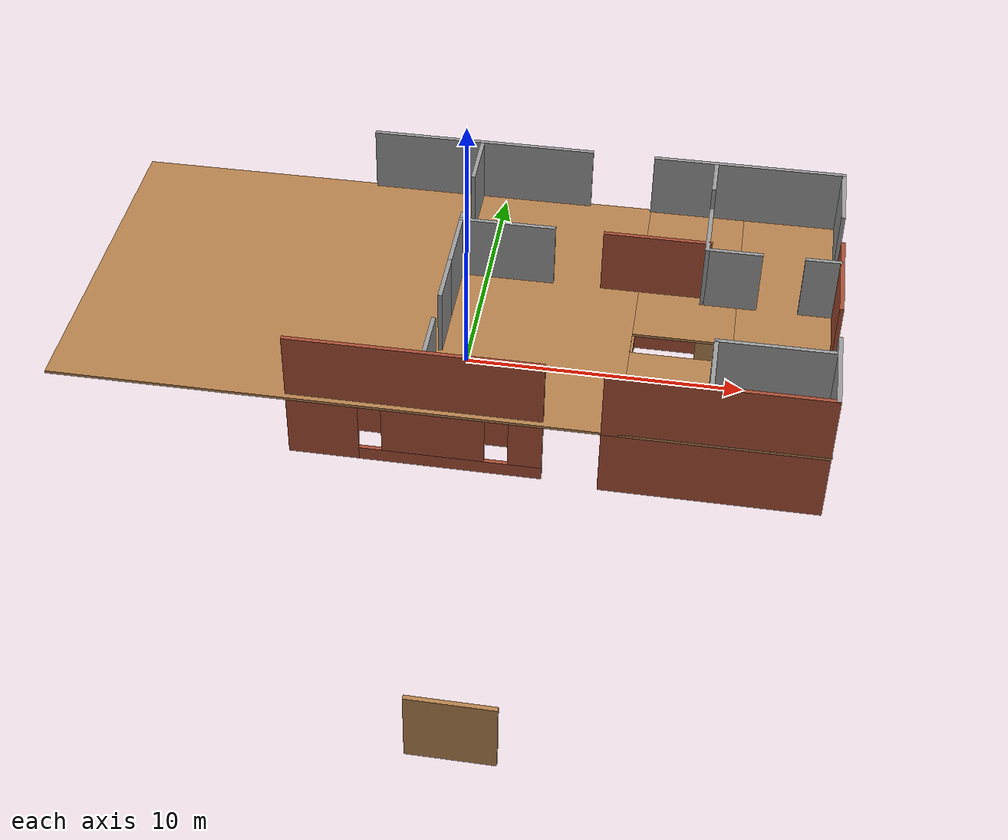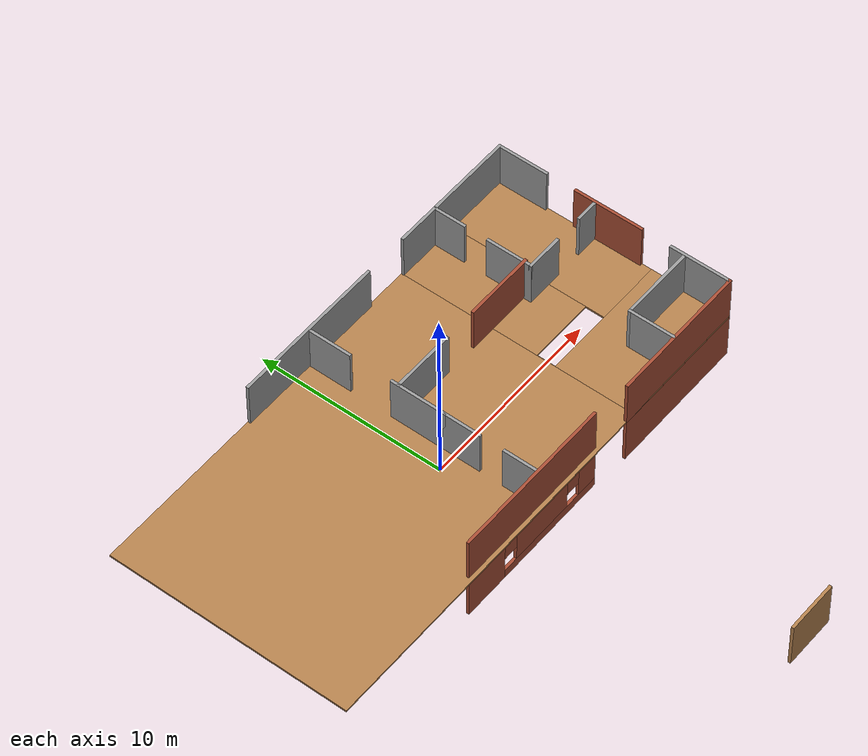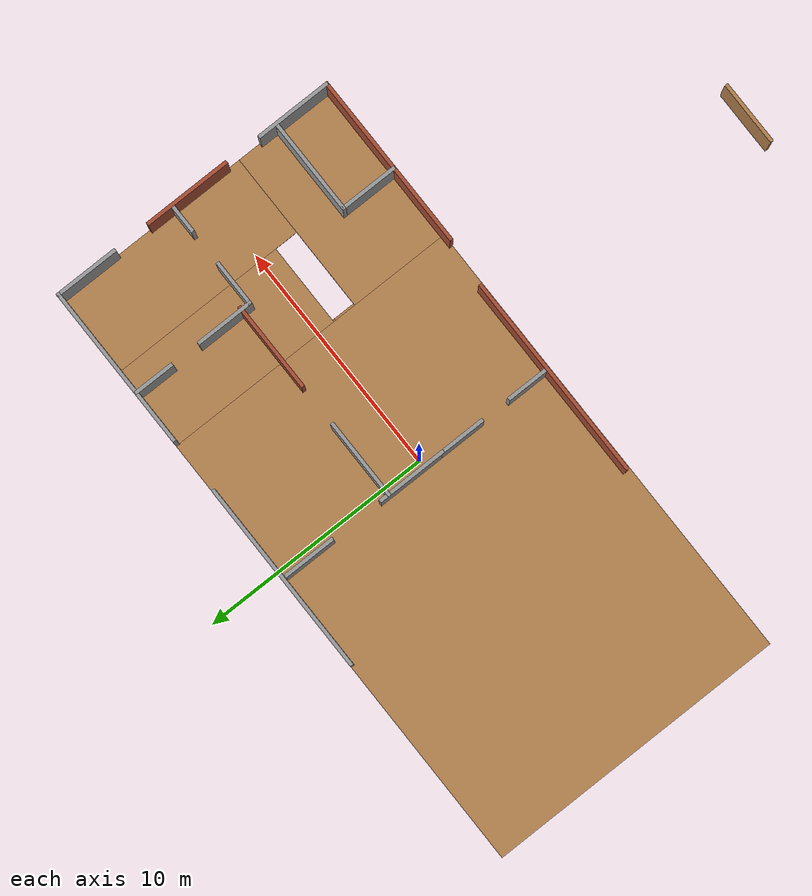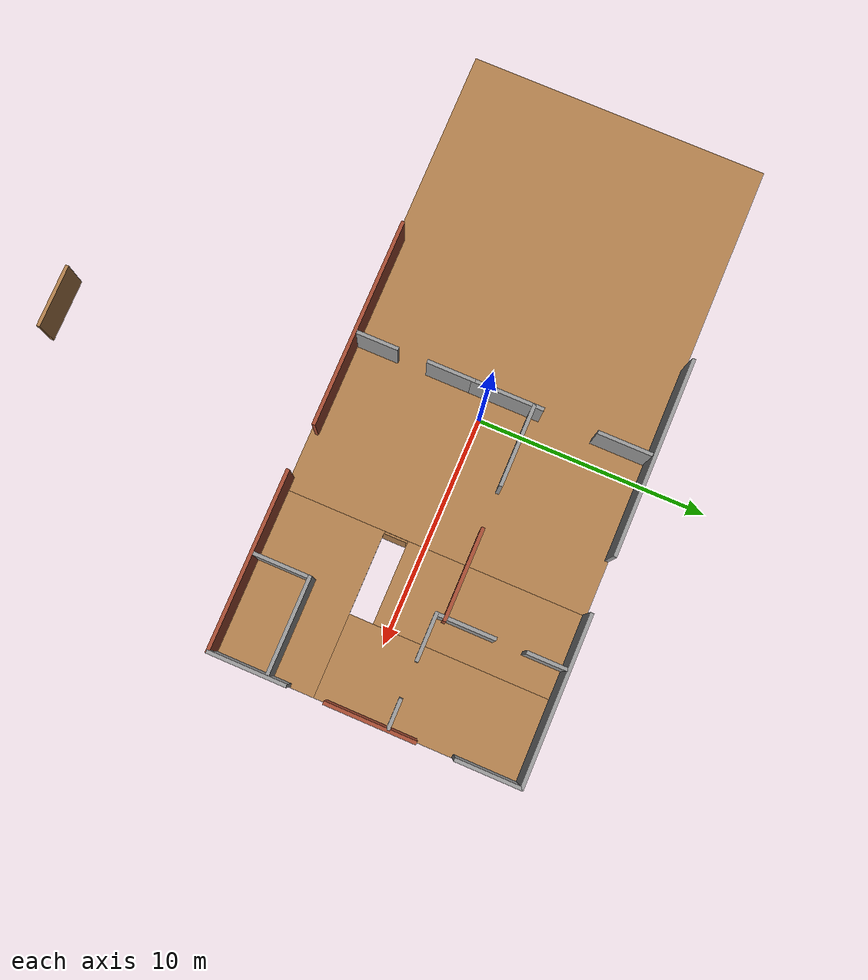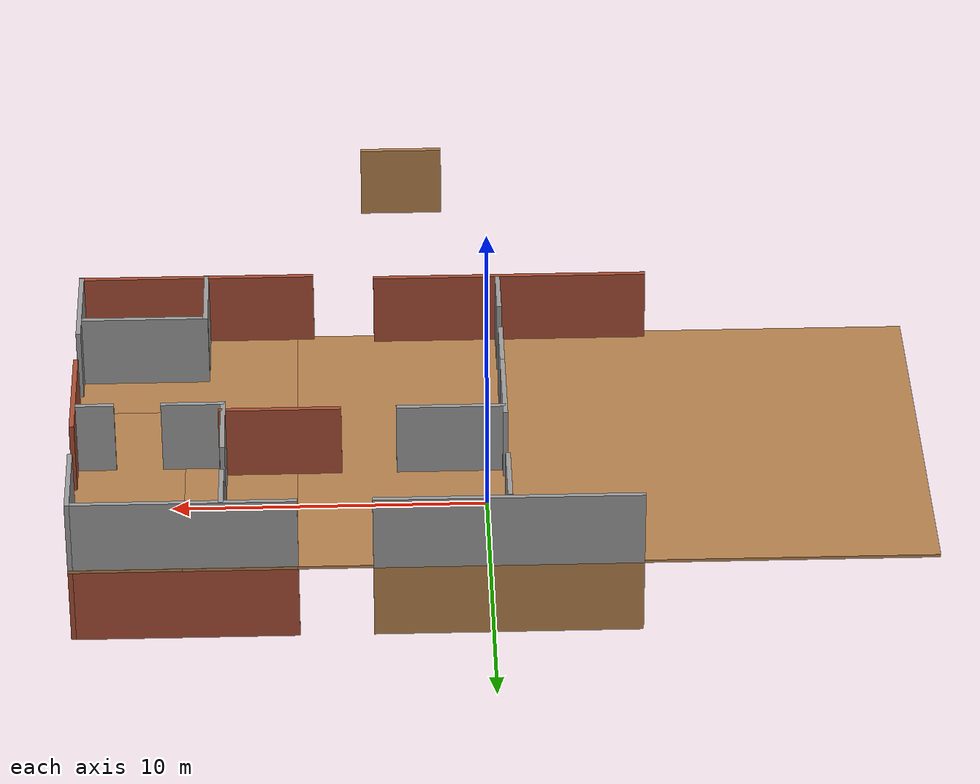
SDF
<sdf version="1.7">
 <model name="new_world">
  <pose>-20.2616 -5.49182 0 0 -0 0</pose>
  <link name="Floor_3">
   <pose>19.9287 5.96658 2.5 0 -0 0</pose>
   <visual name="Floor_3_Visual_0">
    <pose>-3.49208 0 0.05 0 -0 0</pose>
    <geometry><box><size>19.5667 12.7728 0.1</size></box></geometry>
    <material>
     <script><uri>file://media/materials/scripts/gazebo.material</uri><name>Gazebo/Wood</name></script>
     <ambient>1 1 1 1</ambient>
    </material>
    <meta><layer>1</layer></meta>
   </visual>
   <collision name="Floor_3_Collision_0">
    <geometry><box><size>19.5667 12.7728 0.1</size></box></geometry>
    <pose>-3.49208 0 0.05 0 -0 0</pose>
   </collision>
   <visual name="Floor_3_Visual_1">
    <pose>9.78335 -4.25673 0.05 0 -0 0</pose>
    <geometry><box><size>6.98416 4.25935 0.1</size></box></geometry>
    <material>
     <script><uri>file://media/materials/scripts/gazebo.material</uri><name>Gazebo/Wood</name></script>
     <ambient>1 1 1 1</ambient>
    </material>
    <meta><layer>1</layer></meta>
   </visual>
   <collision name="Floor_3_Collision_1">
    <geometry><box><size>6.98416 4.25935 0.1</size></box></geometry>
    <pose>9.78335 -4.25673 0.05 0 -0 0</pose>
   </collision>
   <visual name="Floor_3_Visual_2">
    <pose>11.5333 2.12967 0.05 0 -0 0</pose>
    <geometry><box><size>3.48416 8.51345 0.1</size></box></geometry>
    <material>
     <script><uri>file://media/materials/scripts/gazebo.material</uri><name>Gazebo/Wood</name></script>
     <ambient>1 1 1 1</ambient>
    </material>
    <meta><layer>1</layer></meta>
   </visual>
   <collision name="Floor_3_Collision_2">
    <geometry><box><size>3.48416 8.51345 0.1</size></box></geometry>
    <pose>11.5333 2.12967 0.05 0 -0 0</pose>
   </collision>
   <visual name="Floor_3_Visual_3">
    <pose>8.04127 2.62967 0.05 0 -0 0</pose>
    <geometry><box><size>3.5 7.51345 0.1</size></box></geometry>
    <material>
     <script><uri>file://media/materials/scripts/gazebo.material</uri><name>Gazebo/Wood</name></script>
     <ambient>1 1 1 1</ambient>
    </material>
    <meta><layer>1</layer></meta>
   </visual>
   <collision name="Floor_3_Collision_3">
    <geometry><box><size>3.5 7.51345 0.1</size></box></geometry>
    <pose>8.04127 2.62967 0.05 0 -0 0</pose>
   </collision>
  </link>
  <link name="Wall_167">
   <collision name="Wall_167_Collision">
    <geometry><box><size>7.5 0.15 2.5</size></box></geometry>
    <pose>0 0 1.25 0 -0 0</pose>
   </collision>
   <visual name="Wall_167_Visual">
    <pose>0 0 1.25 0 -0 0</pose>
    <geometry><box><size>7.5 0.15 2.5</size></box></geometry>
    <material>
     <script><uri>file://media/materials/scripts/gazebo.material</uri><name>Gazebo/Bricks</name></script>
     <ambient>1 1 1 1</ambient>
    </material>
    <meta><layer>1</layer></meta>
   </visual>
   <pose>29.4319 -0.344823 2.5 0 -0 0</pose>
  </link>
  <link name="Wall_168">
   <collision name="Wall_168_Collision">
    <geometry><box><size>2.75 0.15 2.5</size></box></geometry>
    <pose>0 0 1.25 0 -0 0</pose>
   </collision>
   <visual name="Wall_168_Visual">
    <pose>0 0 1.25 0 -0 0</pose>
    <geometry><box><size>2.75 0.15 2.5</size></box></geometry>
    <material>
     <script><uri>file://media/materials/scripts/gazebo.material</uri><name>Gazebo/Grey</name></script>
     <ambient>1 1 1 1</ambient>
    </material>
    <meta><layer>1</layer></meta>
   </visual>
   <pose>33.1201 10.972 2.5 0 -0 -1.5708</pose>
  </link>
  <link name="Wall_169">
   <collision name="Wall_169_Collision">
    <geometry><box><size>3.75 0.15 2.5</size></box></geometry>
    <pose>0 0 1.25 0 -0 0</pose>
   </collision>
   <visual name="Wall_169_Visual">
    <pose>0 0 1.25 0 -0 0</pose>
    <geometry><box><size>3.75 0.15 2.5</size></box></geometry>
    <material>
     <script><uri>file://media/materials/scripts/gazebo.material</uri><name>Gazebo/Bricks</name></script>
     <ambient>1 1 1 1</ambient>
    </material>
    <meta><layer>1</layer></meta>
   </visual>
   <pose>33.1291 6.22555 2.5 0 -0 -1.5708</pose>
  </link>
  <link name="Wall_170">
   <collision name="Wall_170_Collision">
    <geometry><box><size>3.25 0.15 2.5</size></box></geometry>
    <pose>0 0 1.25 0 -0 0</pose>
   </collision>
   <visual name="Wall_170_Visual">
    <pose>0 0 1.25 0 -0 0</pose>
    <geometry><box><size>3.25 0.15 2.5</size></box></geometry>
    <material>
     <script><uri>file://media/materials/scripts/gazebo.material</uri><name>Gazebo/Grey</name></script>
     <ambient>1 1 1 1</ambient>
    </material>
    <meta><layer>1</layer></meta>
   </visual>
   <pose>33.1091 1.23835 2.5 0 -0 -1.5708</pose>
  </link>
  <link name="Wall_174">
   <collision name="Wall_174_Collision">
    <geometry><box><size>8.25 0.15 2.5</size></box></geometry>
    <pose>0 0 1.25 0 -0 0</pose>
   </collision>
   <visual name="Wall_174_Visual">
    <pose>0 0 1.25 0 -0 0</pose>
    <geometry><box><size>8.25 0.15 2.5</size></box></geometry>
    <material>
     <script><uri>file://media/materials/scripts/gazebo.material</uri><name>Gazebo/Grey</name></script>
     <ambient>1 1 1 1</ambient>
    </material>
    <meta><layer>1</layer></meta>
   </visual>
   <pose>19.8006 12.278 2.5 0 -0 0</pose>
  </link>
  <link name="Wall_175">
   <collision name="Wall_175_Collision">
    <geometry><box><size>7 0.15 2.5</size></box></geometry>
    <pose>0 0 1.25 0 -0 0</pose>
   </collision>
   <visual name="Wall_175_Visual">
    <pose>0 0 1.25 0 -0 0</pose>
    <geometry><box><size>7 0.15 2.5</size></box></geometry>
    <material>
     <script><uri>file://media/materials/scripts/gazebo.material</uri><name>Gazebo/Grey</name></script>
     <ambient>1 1 1 1</ambient>
    </material>
    <meta><layer>1</layer></meta>
   </visual>
   <pose>29.6951 12.272 2.5 0 -0 3.14159</pose>
  </link>
  <link name="Wall_177">
   <collision name="Wall_177_Collision">
    <geometry><box><size>8.75 0.15 2.5</size></box></geometry>
    <pose>0 0 1.25 0 -0 0</pose>
   </collision>
   <visual name="Wall_177_Visual">
    <pose>0 0 1.25 0 -0 0</pose>
    <geometry><box><size>8.75 0.15 2.5</size></box></geometry>
    <material>
     <script><uri>file://media/materials/scripts/gazebo.material</uri><name>Gazebo/Bricks</name></script>
     <ambient>1 1 1 1</ambient>
    </material>
    <meta><layer>1</layer></meta>
   </visual>
   <pose>19.3774 -0.149946 2.5 0 -0 0</pose>
  </link>
  <link name="Wall_183">
   <collision name="Wall_183_Collision">
    <geometry><box><size>3 0.15 2.5</size></box></geometry>
    <pose>0 0 1.25 0 -0 0</pose>
   </collision>
   <visual name="Wall_183_Visual">
    <pose>0 0 1.25 0 -0 0</pose>
    <geometry><box><size>3 0.15 2.5</size></box></geometry>
    <material>
     <script><uri>file://media/materials/scripts/gazebo.material</uri><name>Gazebo/Grey</name></script>
     <ambient>1 1 1 1</ambient>
    </material>
    <meta><layer>1</layer></meta>
   </visual>
   <pose>19.7634 6.23037 2.5 0 -0 1.5708</pose>
  </link>
  <link name="Wall_184">
   <collision name="Wall_184_Collision">
    <geometry><box><size>2.25 0.15 2.5</size></box></geometry>
    <pose>0 0 1.25 0 -0 0</pose>
   </collision>
   <visual name="Wall_184_Visual">
    <pose>0 0 1.25 0 -0 0</pose>
    <geometry><box><size>2.25 0.15 2.5</size></box></geometry>
    <material>
     <script><uri>file://media/materials/scripts/gazebo.material</uri><name>Gazebo/Grey</name></script>
     <ambient>1 1 1 1</ambient>
    </material>
    <meta><layer>1</layer></meta>
   </visual>
   <pose>19.7634 11.0554 2.5 0 -0 1.5708</pose>
  </link>
  <link name="Wall_187">
   <collision name="Wall_187_Collision">
    <geometry><box><size>2 0.15 2.5</size></box></geometry>
    <pose>0 0 1.25 0 -0 0</pose>
   </collision>
   <visual name="Wall_187_Visual">
    <pose>0 0 1.25 0 -0 0</pose>
    <geometry><box><size>2 0.15 2.5</size></box></geometry>
    <material>
     <script><uri>file://media/materials/scripts/gazebo.material</uri><name>Gazebo/Grey</name></script>
     <ambient>1 1 1 1</ambient>
    </material>
    <meta><layer>1</layer></meta>
   </visual>
   <pose>19.7634 3.88037 2.5 0 -0 -1.5708</pose>
  </link>
  <link name="Wall_188">
   <collision name="Wall_188_Collision">
    <geometry><box><size>1.75 0.15 2.5</size></box></geometry>
    <pose>0 0 1.25 0 -0 0</pose>
   </collision>
   <visual name="Wall_188_Visual">
    <pose>0 0 1.25 0 -0 0</pose>
    <geometry><box><size>1.75 0.15 2.5</size></box></geometry>
    <material>
     <script><uri>file://media/materials/scripts/gazebo.material</uri><name>Gazebo/Grey</name></script>
     <ambient>1 1 1 1</ambient>
    </material>
    <meta><layer>1</layer></meta>
   </visual>
   <pose>19.7634 0.805366 2.5 0 -0 -1.5708</pose>
  </link>
  <link name="Wall_189">
   <collision name="Wall_189_Collision">
    <geometry><box><size>1.75 0.15 2.5</size></box></geometry>
    <pose>0 0 1.25 0 -0 0</pose>
   </collision>
   <visual name="Wall_189_Visual">
    <pose>0 0 1.25 0 -0 0</pose>
    <geometry><box><size>1.75 0.15 2.5</size></box></geometry>
    <material>
     <script><uri>file://media/materials/scripts/gazebo.material</uri><name>Gazebo/Grey</name></script>
     <ambient>1 1 1 1</ambient>
    </material>
    <meta><layer>1</layer></meta>
   </visual>
   <pose>28.489 11.4409 2.5 0 -0 -1.5708</pose>
  </link>
  <link name="Wall_19">
   <collision name="Wall_19_Collision">
    <geometry><box><size>7.5 0.15 2.5</size></box></geometry>
    <pose>0 0 1.25 0 -0 0</pose>
   </collision>
   <visual name="Wall_19_Visual">
    <pose>0 0 1.25 0 -0 0</pose>
    <geometry><box><size>7.5 0.15 2.5</size></box></geometry>
    <material>
     <script><uri>file://media/materials/scripts/gazebo.material</uri><name>Gazebo/Bricks</name></script>
     <ambient>1 1 1 1</ambient>
    </material>
    <meta><layer>0</layer></meta>
   </visual>
   <pose>29.4316 -0.345181 0 0 -0 0</pose>
  </link>
  <link name="Wall_190">
   <collision name="Wall_190_Collision">
    <geometry><box><size>2.5 0.15 2.5</size></box></geometry>
    <pose>0 0 1.25 0 -0 0</pose>
   </collision>
   <visual name="Wall_190_Visual">
    <pose>0 0 1.25 0 -0 0</pose>
    <geometry><box><size>2.5 0.15 2.5</size></box></geometry>
    <material>
     <script><uri>file://media/materials/scripts/gazebo.material</uri><name>Gazebo/Grey</name></script>
     <ambient>1 1 1 1</ambient>
    </material>
    <meta><layer>1</layer></meta>
   </visual>
   <pose>28.489 8.11594 2.5 0 -0 -1.5708</pose>
  </link>
  <link name="Wall_191">
   <collision name="Wall_191_Collision">
    <geometry><box><size>2 0.15 2.5</size></box></geometry>
    <pose>0 0 1.25 0 -0 0</pose>
   </collision>
   <visual name="Wall_191_Visual">
    <pose>0 0 1.25 0 -0 0</pose>
    <geometry><box><size>2 0.15 2.5</size></box></geometry>
    <material>
     <script><uri>file://media/materials/scripts/gazebo.material</uri><name>Gazebo/Grey</name></script>
     <ambient>1 1 1 1</ambient>
    </material>
    <meta><layer>1</layer></meta>
   </visual>
   <pose>29.414 6.94094 2.5 0 -0 0</pose>
  </link>
  <link name="Wall_192">
   <collision name="Wall_192_Collision">
    <geometry><box><size>1.25 0.15 2.5</size></box></geometry>
    <pose>0 0 1.25 0 -0 0</pose>
   </collision>
   <visual name="Wall_192_Visual">
    <pose>0 0 1.25 0 -0 0</pose>
    <geometry><box><size>1.25 0.15 2.5</size></box></geometry>
    <material>
     <script><uri>file://media/materials/scripts/gazebo.material</uri><name>Gazebo/Grey</name></script>
     <ambient>1 1 1 1</ambient>
    </material>
    <meta><layer>1</layer></meta>
   </visual>
   <pose>32.489 6.94094 2.5 0 -0 0</pose>
  </link>
  <link name="Wall_193">
   <collision name="Wall_193_Collision">
    <geometry><box><size>3.4468 0.15 2.5</size></box></geometry>
    <pose>0 0 1.25 0 -0 0</pose>
   </collision>
   <visual name="Wall_193_Visual">
    <pose>0 0 1.25 0 -0 0</pose>
    <geometry><box><size>3.4468 0.15 2.5</size></box></geometry>
    <material>
     <script><uri>file://media/materials/scripts/gazebo.material</uri><name>Gazebo/Grey</name></script>
     <ambient>1 1 1 1</ambient>
    </material>
    <meta><layer>1</layer></meta>
   </visual>
   <pose>21.4125 7.3199 2.5 0 -0 0</pose>
  </link>
  <link name="Wall_194">
   <collision name="Wall_194_Collision">
    <geometry><box><size>3.8032 0.15 2.5</size></box></geometry>
    <pose>0 0 1.25 0 -0 0</pose>
   </collision>
   <visual name="Wall_194_Visual">
    <pose>0 0 1.25 0 -0 0</pose>
    <geometry><box><size>3.8032 0.15 2.5</size></box></geometry>
    <material>
     <script><uri>file://media/materials/scripts/gazebo.material</uri><name>Gazebo/Bricks</name></script>
     <ambient>1 1 1 1</ambient>
    </material>
    <meta><layer>1</layer></meta>
   </visual>
   <pose>26.7375 7.3199 2.5 0 -0 0</pose>
  </link>
  <link name="Wall_199">
   <collision name="Wall_199_Collision">
    <geometry><box><size>4 0.15 2.5</size></box></geometry>
    <pose>0 0 1.25 0 -0 0</pose>
   </collision>
   <visual name="Wall_199_Visual">
    <pose>0 0 1.25 0 -0 0</pose>
    <geometry><box><size>4 0.15 2.5</size></box></geometry>
    <material>
     <script><uri>file://media/materials/scripts/gazebo.material</uri><name>Gazebo/Grey</name></script>
     <ambient>1 1 1 1</ambient>
    </material>
    <meta><layer>1</layer></meta>
   </visual>
   <pose>31.0314 2.04433 2.5 0 -0 0</pose>
  </link>
  <link name="Wall_200">
   <collision name="Wall_200_Collision">
    <geometry><box><size>2.5 0.15 2.5</size></box></geometry>
    <pose>0 0 1.25 0 -0 0</pose>
   </collision>
   <visual name="Wall_200_Visual">
    <pose>0 0 1.25 0 -0 0</pose>
    <geometry><box><size>2.5 0.15 2.5</size></box></geometry>
    <material>
     <script><uri>file://media/materials/scripts/gazebo.material</uri><name>Gazebo/Grey</name></script>
     <ambient>1 1 1 1</ambient>
    </material>
    <meta><layer>1</layer></meta>
   </visual>
   <pose>29.1064 0.869326 2.5 0 -0 -1.5708</pose>
  </link>
  <link name="Wall_208">
   <collision name="Wall_208_Collision">
    <geometry><box><size>2.75 0.15 2.5</size></box></geometry>
    <pose>0 0 1.25 0 -0 0</pose>
   </collision>
   <visual name="Wall_208_Visual">
    <pose>0 0 1.25 0 -0 0</pose>
    <geometry><box><size>2.75 0.15 2.5</size></box></geometry>
    <material>
     <script><uri>file://media/materials/scripts/gazebo.material</uri><name>Gazebo/Wood</name></script>
     <ambient>1 1 1 1</ambient>
    </material>
    <meta><layer>0</layer></meta>
   </visual>
   <pose>22.7009 -12.278 0 0 -0 0</pose>
  </link>
  <link name="Wall_21">
   <collision name="Wall_21_Collision">
    <geometry><box><size>2.75 0.15 2.5</size></box></geometry>
    <pose>0 0 1.25 0 -0 0</pose>
   </collision>
   <visual name="Wall_21_Visual">
    <pose>0 0 1.25 0 -0 0</pose>
    <geometry><box><size>2.75 0.15 2.5</size></box></geometry>
    <material>
     <script><uri>file://media/materials/scripts/gazebo.material</uri><name>Gazebo/Bricks</name></script>
     <ambient>1 1 1 1</ambient>
    </material>
    <meta><layer>0</layer></meta>
   </visual>
   <pose>33.1201 10.972 0 0 -0 -1.5708</pose>
  </link>
  <link name="Wall_24">
   <collision name="Wall_24_Collision">
    <geometry><box><size>3.75 0.15 2.5</size></box></geometry>
    <pose>0 0 1.25 0 -0 0</pose>
   </collision>
   <visual name="Wall_24_Visual">
    <pose>0 0 1.25 0 -0 0</pose>
    <geometry><box><size>3.75 0.15 2.5</size></box></geometry>
    <material>
     <script><uri>file://media/materials/scripts/gazebo.material</uri><name>Gazebo/Wood</name></script>
     <ambient>1 1 1 1</ambient>
    </material>
    <meta><layer>0</layer></meta>
   </visual>
   <pose>33.1296 6.22582 0 0 -0 -1.5708</pose>
  </link>
  <link name="Wall_26">
   <collision name="Wall_26_Collision">
    <geometry><box><size>3.25 0.15 2.5</size></box></geometry>
    <pose>0 0 1.25 0 -0 0</pose>
   </collision>
   <visual name="Wall_26_Visual">
    <pose>0 0 1.25 0 -0 0</pose>
    <geometry><box><size>3.25 0.15 2.5</size></box></geometry>
    <material>
     <script><uri>file://media/materials/scripts/gazebo.material</uri><name>Gazebo/Bricks</name></script>
     <ambient>1 1 1 1</ambient>
    </material>
    <meta><layer>0</layer></meta>
   </visual>
   <pose>33.1096 1.23882 0 0 -0 -1.5708</pose>
  </link>
  <link name="Wall_34">
   <collision name="Wall_34_Collision">
    <geometry><box><size>8.25 0.15 2.5</size></box></geometry>
    <pose>0 0 1.25 0 -0 0</pose>
   </collision>
   <visual name="Wall_34_Visual">
    <pose>0 0 1.25 0 -0 0</pose>
    <geometry><box><size>8.25 0.15 2.5</size></box></geometry>
    <material>
     <script><uri>file://media/materials/scripts/gazebo.material</uri><name>Gazebo/Wood</name></script>
     <ambient>1 1 1 1</ambient>
    </material>
    <meta><layer>0</layer></meta>
   </visual>
   <pose>19.8006 12.278 0 0 -0 0</pose>
  </link>
  <link name="Wall_40">
   <collision name="Wall_40_Collision">
    <geometry><box><size>7 0.15 2.5</size></box></geometry>
    <pose>0 0 1.25 0 -0 0</pose>
   </collision>
   <visual name="Wall_40_Visual">
    <pose>0 0 1.25 0 -0 0</pose>
    <geometry><box><size>7 0.15 2.5</size></box></geometry>
    <material>
     <script><uri>file://media/materials/scripts/gazebo.material</uri><name>Gazebo/Bricks</name></script>
     <ambient>1 1 1 1</ambient>
    </material>
    <meta><layer>0</layer></meta>
   </visual>
   <pose>29.6951 12.272 0 0 -0 3.14159</pose>
  </link>
  <link name="Wall_47">
   <pose>19.3776 -0.150181 0 0 -0 0</pose>
   <visual name="Wall_47_Visual_0">
    <pose>-3.14544 0 1.25 0 -0 0</pose>
    <geometry><box><size>2.45912 0.15 2.5</size></box></geometry>
    <material>
     <script><uri>file://media/materials/scripts/gazebo.material</uri><name>Gazebo/Bricks</name></script>
     <ambient>1 1 1 1</ambient>
    </material>
    <meta><layer>0</layer></meta>
   </visual>
   <collision name="Wall_47_Collision_0">
    <geometry><box><size>2.45912 0.15 2.5</size></box></geometry>
    <pose>-3.14544 0 1.25 0 -0 0</pose>
   </collision>
   <visual name="Wall_47_Visual_1">
    <pose>1.22956 0 0.25 0 -0 0</pose>
    <geometry><box><size>6.29087 0.15 0.5</size></box></geometry>
    <material>
     <script><uri>file://media/materials/scripts/gazebo.material</uri><name>Gazebo/Bricks</name></script>
     <ambient>1 1 1 1</ambient>
    </material>
    <meta><layer>0</layer></meta>
   </visual>
   <collision name="Wall_47_Collision_1">
    <geometry><box><size>6.29087 0.15 0.5</size></box></geometry>
    <pose>1.22956 0 0.25 0 -0 0</pose>
   </collision>
   <visual name="Wall_47_Visual_2">
    <pose>0.646334 0 1.5 0 -0 0</pose>
    <geometry><box><size>3.52442 0.15 2</size></box></geometry>
    <material>
     <script><uri>file://media/materials/scripts/gazebo.material</uri><name>Gazebo/Bricks</name></script>
     <ambient>1 1 1 1</ambient>
    </material>
    <meta><layer>0</layer></meta>
   </visual>
   <collision name="Wall_47_Collision_2">
    <geometry><box><size>3.52442 0.15 2</size></box></geometry>
    <pose>0.646334 0 1.5 0 -0 0</pose>
   </collision>
   <visual name="Wall_47_Visual_3">
    <pose>3.79177 0 1.5 0 -0 0</pose>
    <geometry><box><size>1.16646 0.15 2</size></box></geometry>
    <material>
     <script><uri>file://media/materials/scripts/gazebo.material</uri><name>Gazebo/Bricks</name></script>
     <ambient>1 1 1 1</ambient>
    </material>
    <meta><layer>0</layer></meta>
   </visual>
   <collision name="Wall_47_Collision_3">
    <geometry><box><size>1.16646 0.15 2</size></box></geometry>
    <pose>3.79177 0 1.5 0 -0 0</pose>
   </collision>
   <visual name="Wall_47_Visual_4">
    <pose>-1.51588 0 1.9 0 -0 0</pose>
    <geometry><box><size>0.8 0.15 1.2</size></box></geometry>
    <material>
     <script><uri>file://media/materials/scripts/gazebo.material</uri><name>Gazebo/Bricks</name></script>
     <ambient>1 1 1 1</ambient>
    </material>
    <meta><layer>0</layer></meta>
   </visual>
   <collision name="Wall_47_Collision_4">
    <geometry><box><size>0.8 0.15 1.2</size></box></geometry>
    <pose>-1.51588 0 1.9 0 -0 0</pose>
   </collision>
   <visual name="Wall_47_Visual_5">
    <pose>2.80854 0 1.9 0 -0 0</pose>
    <geometry><box><size>0.8 0.15 1.2</size></box></geometry>
    <material>
     <script><uri>file://media/materials/scripts/gazebo.material</uri><name>Gazebo/Bricks</name></script>
     <ambient>1 1 1 1</ambient>
    </material>
    <meta><layer>0</layer></meta>
   </visual>
   <collision name="Wall_47_Collision_5">
    <geometry><box><size>0.8 0.15 1.2</size></box></geometry>
    <pose>2.80854 0 1.9 0 -0 0</pose>
   </collision>
  </link>
  <link name="Wall_61">
   <collision name="Wall_61_Collision">
    <geometry><box><size>3 0.15 2.5</size></box></geometry>
    <pose>0 0 1.25 0 -0 0</pose>
   </collision>
   <visual name="Wall_61_Visual">
    <pose>0 0 1.25 0 -0 0</pose>
    <geometry><box><size>3 0.15 2.5</size></box></geometry>
    <material>
     <script><uri>file://media/materials/scripts/gazebo.material</uri><name>Gazebo/Wood</name></script>
     <ambient>1 1 1 1</ambient>
    </material>
    <meta><layer>0</layer></meta>
   </visual>
   <pose>19.7635 6.23059 0 0 -0 1.57088</pose>
  </link>
  <link name="Wall_63">
   <pose>19.7634 11.0554 0 0 -0 1.5708</pose>
   <visual name="Wall_63_Visual_0">
    <pose>-0.791187 0 1.25 0 -0 0</pose>
    <geometry><box><size>0.667626 0.15 2.5</size></box></geometry>
    <material>
     <script><uri>file://media/materials/scripts/gazebo.material</uri><name>Gazebo/Wood</name></script>
     <ambient>1 1 1 1</ambient>
    </material>
    <meta><layer>0</layer></meta>
   </visual>
   <collision name="Wall_63_Collision_0">
    <geometry><box><size>0.667626 0.15 2.5</size></box></geometry>
    <pose>-0.791187 0 1.25 0 -0 0</pose>
   </collision>
   <visual name="Wall_63_Visual_1">
    <pose>0.333813 0 0.25 0 -0 0</pose>
    <geometry><box><size>1.58237 0.15 0.5</size></box></geometry>
    <material>
     <script><uri>file://media/materials/scripts/gazebo.material</uri><name>Gazebo/Wood</name></script>
     <ambient>1 1 1 1</ambient>
    </material>
    <meta><layer>0</layer></meta>
   </visual>
   <collision name="Wall_63_Collision_1">
    <geometry><box><size>1.58237 0.15 0.5</size></box></geometry>
    <pose>0.333813 0 0.25 0 -0 0</pose>
   </collision>
   <visual name="Wall_63_Visual_2">
    <pose>0.733813 0 1.5 0 -0 0</pose>
    <geometry><box><size>0.782374 0.15 2</size></box></geometry>
    <material>
     <script><uri>file://media/materials/scripts/gazebo.material</uri><name>Gazebo/Wood</name></script>
     <ambient>1 1 1 1</ambient>
    </material>
    <meta><layer>0</layer></meta>
   </visual>
   <collision name="Wall_63_Collision_2">
    <geometry><box><size>0.782374 0.15 2</size></box></geometry>
    <pose>0.733813 0 1.5 0 -0 0</pose>
   </collision>
   <visual name="Wall_63_Visual_3">
    <pose>-0.057374 0 1.9 0 -0 0</pose>
    <geometry><box><size>0.8 0.15 1.2</size></box></geometry>
    <material>
     <script><uri>file://media/materials/scripts/gazebo.material</uri><name>Gazebo/Wood</name></script>
     <ambient>1 1 1 1</ambient>
    </material>
    <meta><layer>0</layer></meta>
   </visual>
   <collision name="Wall_63_Collision_3">
    <geometry><box><size>0.8 0.15 1.2</size></box></geometry>
    <pose>-0.057374 0 1.9 0 -0 0</pose>
   </collision>
  </link>
  <link name="Wall_70">
   <collision name="Wall_70_Collision">
    <geometry><box><size>2 0.15 2.5</size></box></geometry>
    <pose>0 0 1.25 0 -0 0</pose>
   </collision>
   <visual name="Wall_70_Visual">
    <pose>0 0 1.25 0 -0 0</pose>
    <geometry><box><size>2 0.15 2.5</size></box></geometry>
    <material>
     <script><uri>file://media/materials/scripts/gazebo.material</uri><name>Gazebo/Wood</name></script>
     <ambient>1 1 1 1</ambient>
    </material>
    <meta><layer>0</layer></meta>
   </visual>
   <pose>19.7635 3.88059 0 0 -0 -1.57092</pose>
  </link>
  <link name="Wall_72">
   <collision name="Wall_72_Collision">
    <geometry><box><size>1.75 0.15 2.5</size></box></geometry>
    <pose>0 0 1.25 0 -0 0</pose>
   </collision>
   <visual name="Wall_72_Visual">
    <pose>0 0 1.25 0 -0 0</pose>
    <geometry><box><size>1.75 0.15 2.5</size></box></geometry>
    <material>
     <script><uri>file://media/materials/scripts/gazebo.material</uri><name>Gazebo/Bricks</name></script>
     <ambient>1 1 1 1</ambient>
    </material>
    <meta><layer>0</layer></meta>
   </visual>
   <pose>19.7636 0.805819 0 0 -0 -1.5708</pose>
  </link>
  <link name="Wall_74">
   <collision name="Wall_74_Collision">
    <geometry><box><size>1.75 0.15 2.5</size></box></geometry>
    <pose>0 0 1.25 0 -0 0</pose>
   </collision>
   <visual name="Wall_74_Visual">
    <pose>0 0 1.25 0 -0 0</pose>
    <geometry><box><size>1.75 0.15 2.5</size></box></geometry>
    <material>
     <script><uri>file://media/materials/scripts/gazebo.material</uri><name>Gazebo/Wood</name></script>
     <ambient>1 1 1 1</ambient>
    </material>
    <meta><layer>0</layer></meta>
   </visual>
   <pose>28.489 11.4409 0 0 -0 -1.5708</pose>
  </link>
  <link name="Wall_76">
   <collision name="Wall_76_Collision">
    <geometry><box><size>2.5 0.15 2.5</size></box></geometry>
    <pose>0 0 1.25 0 -0 0</pose>
   </collision>
   <visual name="Wall_76_Visual">
    <pose>0 0 1.25 0 -0 0</pose>
    <geometry><box><size>2.5 0.15 2.5</size></box></geometry>
    <material>
     <script><uri>file://media/materials/scripts/gazebo.material</uri><name>Gazebo/Bricks</name></script>
     <ambient>1 1 1 1</ambient>
    </material>
    <meta><layer>0</layer></meta>
   </visual>
   <pose>28.489 8.11594 0 0 -0 -1.5708</pose>
  </link>
  <link name="Wall_77">
   <collision name="Wall_77_Collision">
    <geometry><box><size>2 0.15 2.5</size></box></geometry>
    <pose>0 0 1.25 0 -0 0</pose>
   </collision>
   <visual name="Wall_77_Visual">
    <pose>0 0 1.25 0 -0 0</pose>
    <geometry><box><size>2 0.15 2.5</size></box></geometry>
    <material>
     <script><uri>file://media/materials/scripts/gazebo.material</uri><name>Gazebo/Wood</name></script>
     <ambient>1 1 1 1</ambient>
    </material>
    <meta><layer>0</layer></meta>
   </visual>
   <pose>29.414 6.94094 0 0 -0 0</pose>
  </link>
  <link name="Wall_79">
   <collision name="Wall_79_Collision">
    <geometry><box><size>1.25 0.15 2.5</size></box></geometry>
    <pose>0 0 1.25 0 -0 0</pose>
   </collision>
   <visual name="Wall_79_Visual">
    <pose>0 0 1.25 0 -0 0</pose>
    <geometry><box><size>1.25 0.15 2.5</size></box></geometry>
    <material>
     <script><uri>file://media/materials/scripts/gazebo.material</uri><name>Gazebo/Wood</name></script>
     <ambient>1 1 1 1</ambient>
    </material>
    <meta><layer>0</layer></meta>
   </visual>
   <pose>32.489 6.94094 0 0 -0 0</pose>
  </link>
  <link name="Wall_83">
   <collision name="Wall_83_Collision">
    <geometry><box><size>3.4468 0.15 2.5</size></box></geometry>
    <pose>0 0 1.25 0 -0 0</pose>
   </collision>
   <visual name="Wall_83_Visual">
    <pose>0 0 1.25 0 -0 0</pose>
    <geometry><box><size>3.4468 0.15 2.5</size></box></geometry>
    <material>
     <script><uri>file://media/materials/scripts/gazebo.material</uri><name>Gazebo/Wood</name></script>
     <ambient>1 1 1 1</ambient>
    </material>
    <meta><layer>0</layer></meta>
   </visual>
   <pose>21.4125 7.3199 0 0 -0 0</pose>
  </link>
  <link name="Wall_85">
   <collision name="Wall_85_Collision">
    <geometry><box><size>3.8032 0.15 2.5</size></box></geometry>
    <pose>0 0 1.25 0 -0 0</pose>
   </collision>
   <visual name="Wall_85_Visual">
    <pose>0 0 1.25 0 -0 0</pose>
    <geometry><box><size>3.8032 0.15 2.5</size></box></geometry>
    <material>
     <script><uri>file://media/materials/scripts/gazebo.material</uri><name>Gazebo/Bricks</name></script>
     <ambient>1 1 1 1</ambient>
    </material>
    <meta><layer>0</layer></meta>
   </visual>
   <pose>26.7375 7.3199 0 0 -0 0</pose>
  </link>
  <link name="Wall_87">
   <collision name="Wall_87_Collision">
    <geometry><box><size>2.5 0.15 2.5</size></box></geometry>
    <pose>0 0 1.25 0 -0 0</pose>
   </collision>
   <visual name="Wall_87_Visual">
    <pose>0 0 1.25 0 -0 0</pose>
    <geometry><box><size>2.5 0.15 2.5</size></box></geometry>
    <material>
     <script><uri>file://media/materials/scripts/gazebo.material</uri><name>Gazebo/Bricks</name></script>
     <ambient>1 1 1 1</ambient>
    </material>
    <meta><layer>0</layer></meta>
   </visual>
   <pose>23.6307 3.65304 0 0 -0 -1.5708</pose>
  </link>
  <link name="Wall_88">
   <pose>24.9307 2.47804 0 0 -0 0</pose>
   <visual name="Wall_88_Visual_0">
    <pose>-0.893527 0 1.25 0 -0 0</pose>
    <geometry><box><size>0.962946 0.15 2.5</size></box></geometry>
    <material>
     <script><uri>file://media/materials/scripts/gazebo.material</uri><name>Gazebo/Wood</name></script>
     <ambient>1 1 1 1</ambient>
    </material>
    <meta><layer>0</layer></meta>
   </visual>
   <collision name="Wall_88_Collision_0">
    <geometry><box><size>0.962946 0.15 2.5</size></box></geometry>
    <pose>-0.893527 0 1.25 0 -0 0</pose>
   </collision>
   <visual name="Wall_88_Visual_1">
    <pose>0.931473 0 1.25 0 -0 0</pose>
    <geometry><box><size>0.887054 0.15 2.5</size></box></geometry>
    <material>
     <script><uri>file://media/materials/scripts/gazebo.material</uri><name>Gazebo/Wood</name></script>
     <ambient>1 1 1 1</ambient>
    </material>
    <meta><layer>0</layer></meta>
   </visual>
   <collision name="Wall_88_Collision_1">
    <geometry><box><size>0.887054 0.15 2.5</size></box></geometry>
    <pose>0.931473 0 1.25 0 -0 0</pose>
   </collision>
   <visual name="Wall_88_Visual_2">
    <pose>0.037946 0 2.25 0 -0 0</pose>
    <geometry><box><size>0.9 0.15 0.5</size></box></geometry>
    <material>
     <script><uri>file://media/materials/scripts/gazebo.material</uri><name>Gazebo/Wood</name></script>
     <ambient>1 1 1 1</ambient>
    </material>
    <meta><layer>0</layer></meta>
   </visual>
   <collision name="Wall_88_Collision_2">
    <geometry><box><size>0.9 0.15 0.5</size></box></geometry>
    <pose>0.037946 0 2.25 0 -0 0</pose>
   </collision>
  </link>
  <link name="Wall_89">
   <collision name="Wall_89_Collision">
    <geometry><box><size>2.5 0.15 2.5</size></box></geometry>
    <pose>0 0 1.25 0 -0 0</pose>
   </collision>
   <visual name="Wall_89_Visual">
    <pose>0 0 1.25 0 -0 0</pose>
    <geometry><box><size>2.5 0.15 2.5</size></box></geometry>
    <material>
     <script><uri>file://media/materials/scripts/gazebo.material</uri><name>Gazebo/Wood</name></script>
     <ambient>1 1 1 1</ambient>
    </material>
    <meta><layer>0</layer></meta>
   </visual>
   <pose>26.2307 3.65304 0 0 -0 1.5708</pose>
  </link>
  <link name="Wall_90">
   <collision name="Wall_90_Collision">
    <geometry><box><size>2.75 0.15 2.5</size></box></geometry>
    <pose>0 0 1.25 0 -0 0</pose>
   </collision>
   <visual name="Wall_90_Visual">
    <pose>0 0 1.25 0 -0 0</pose>
    <geometry><box><size>2.75 0.15 2.5</size></box></geometry>
    <material>
     <script><uri>file://media/materials/scripts/gazebo.material</uri><name>Gazebo/Wood</name></script>
     <ambient>1 1 1 1</ambient>
    </material>
    <meta><layer>0</layer></meta>
   </visual>
   <pose>24.9307 4.82804 0 0 -0 3.14159</pose>
  </link>
  <link name="Wall_92">
   <pose>31.0316 2.04482 0 0 -0 0</pose>
   <visual name="Wall_92_Visual_0">
    <pose>-1.13224 0 1.25 0 -0 0</pose>
    <geometry><box><size>1.73553 0.15 2.5</size></box></geometry>
    <material>
     <script><uri>file://media/materials/scripts/gazebo.material</uri><name>Gazebo/Wood</name></script>
     <ambient>1 1 1 1</ambient>
    </material>
    <meta><layer>0</layer></meta>
   </visual>
   <collision name="Wall_92_Collision_0">
    <geometry><box><size>1.73553 0.15 2.5</size></box></geometry>
    <pose>-1.13224 0 1.25 0 -0 0</pose>
   </collision>
   <visual name="Wall_92_Visual_1">
    <pose>1.31776 0 1.25 0 -0 0</pose>
    <geometry><box><size>1.36447 0.15 2.5</size></box></geometry>
    <material>
     <script><uri>file://media/materials/scripts/gazebo.material</uri><name>Gazebo/Wood</name></script>
     <ambient>1 1 1 1</ambient>
    </material>
    <meta><layer>0</layer></meta>
   </visual>
   <collision name="Wall_92_Collision_1">
    <geometry><box><size>1.36447 0.15 2.5</size></box></geometry>
    <pose>1.31776 0 1.25 0 -0 0</pose>
   </collision>
   <visual name="Wall_92_Visual_2">
    <pose>0.185529 0 2.25 0 -0 0</pose>
    <geometry><box><size>0.9 0.15 0.5</size></box></geometry>
    <material>
     <script><uri>file://media/materials/scripts/gazebo.material</uri><name>Gazebo/Wood</name></script>
     <ambient>1 1 1 1</ambient>
    </material>
    <meta><layer>0</layer></meta>
   </visual>
   <collision name="Wall_92_Collision_2">
    <geometry><box><size>0.9 0.15 0.5</size></box></geometry>
    <pose>0.185529 0 2.25 0 -0 0</pose>
   </collision>
  </link>
  <link name="Wall_94">
   <collision name="Wall_94_Collision">
    <geometry><box><size>2.5 0.15 2.5</size></box></geometry>
    <pose>0 0 1.25 0 -0 0</pose>
   </collision>
   <visual name="Wall_94_Visual">
    <pose>0 0 1.25 0 -0 0</pose>
    <geometry><box><size>2.5 0.15 2.5</size></box></geometry>
    <material>
     <script><uri>file://media/materials/scripts/gazebo.material</uri><name>Gazebo/Wood</name></script>
     <ambient>1 1 1 1</ambient>
    </material>
    <meta><layer>0</layer></meta>
   </visual>
   <pose>29.1066 0.869819 0 0 -0 -1.5708</pose>
  </link>
  <static>1</static>
 </model>
</sdf>
